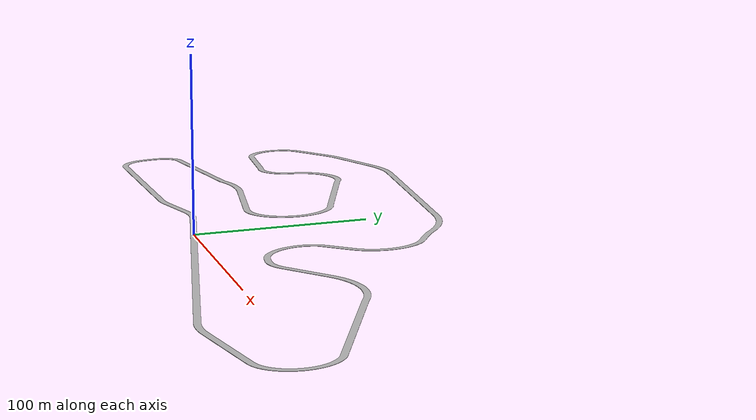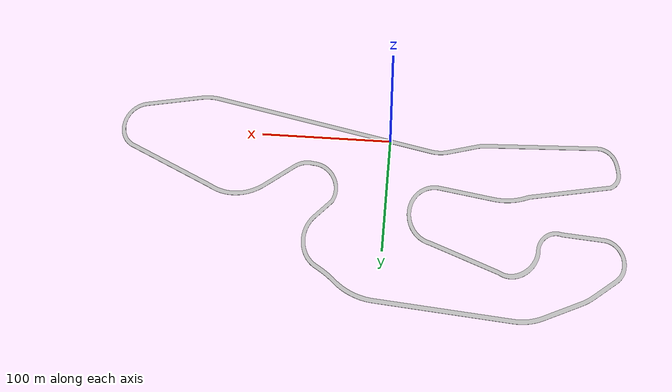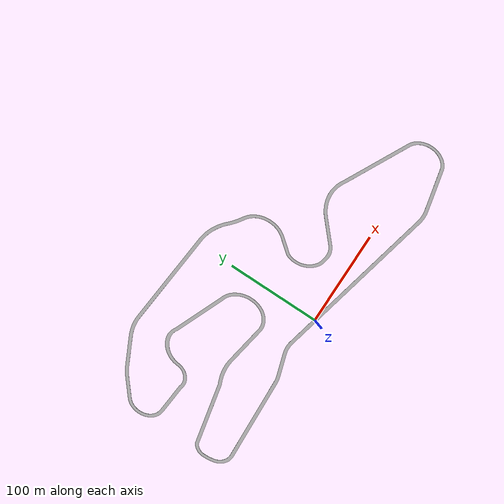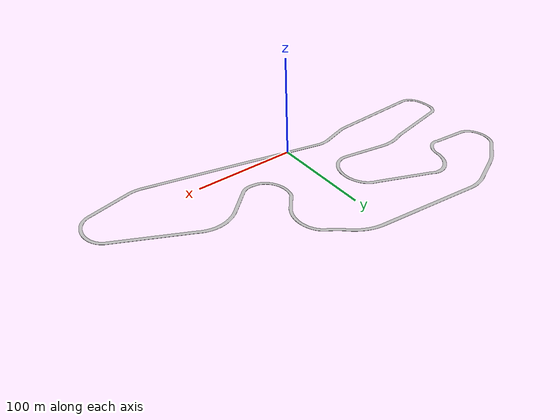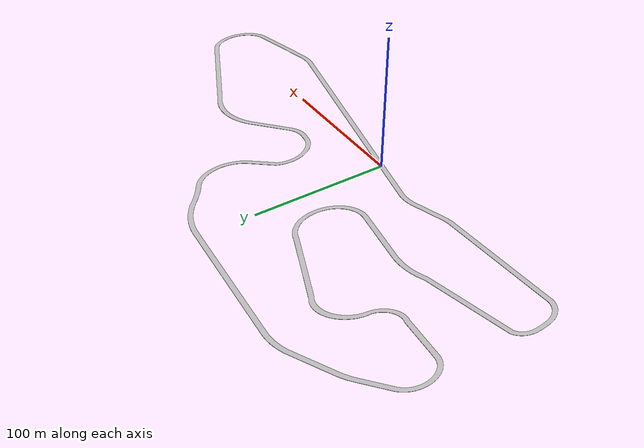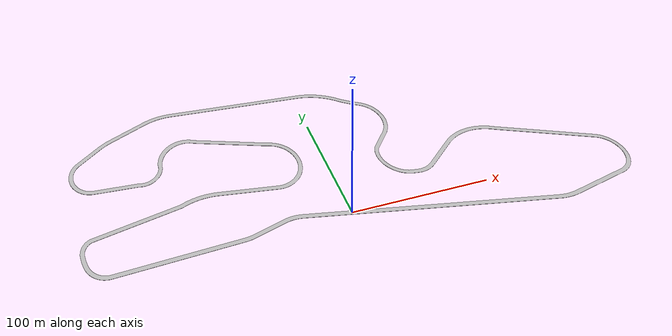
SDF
<?xml version="1.0" ?>
<sdf version="1.6">

  <model name='racetrack'>
    <static>true</static>
      <link name='racetrack'>
        <pose frame=''>0 0 0 0 0 0</pose>
          <collision name='racetrack'>
            <geometry>
              <mesh>
                <uri>model://racetrack/racetrackv3.dae</uri>
              </mesh>
            </geometry>
          </collision>
          <visual name='racetrack'>
          <cast_shadows>false</cast_shadows>
            <geometry>
              <mesh>
                <scale>1 1 1</scale>
                <uri>model://racetrack/racetrackv3.dae</uri>
              </mesh>
            </geometry>
            <material>
              <script>
                <name>racetrack</name>
                <uri>model://racetrack/racetrackv3.dae</uri>
              </script>
            </material>
          </visual>
        </link>
    </model>
  </sdf>
